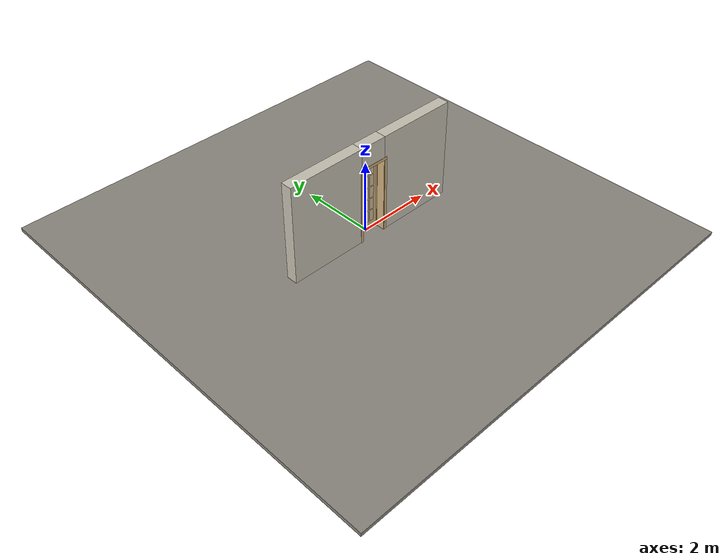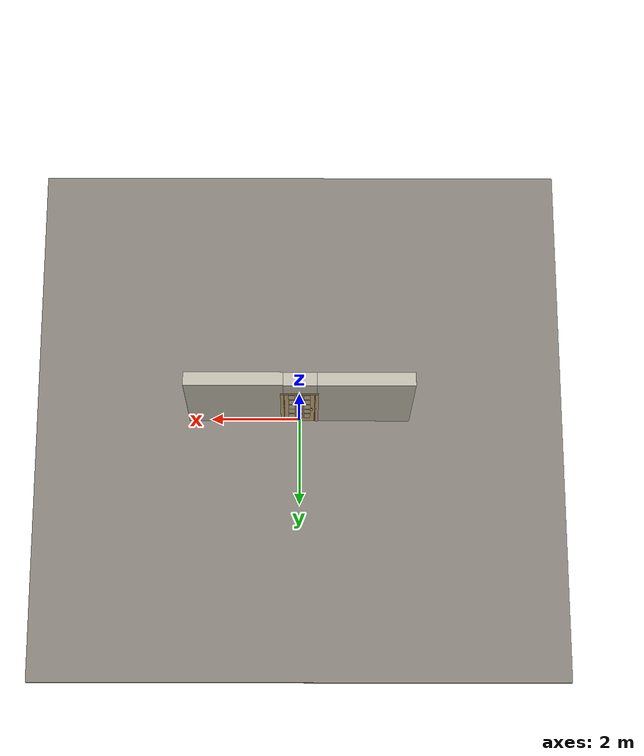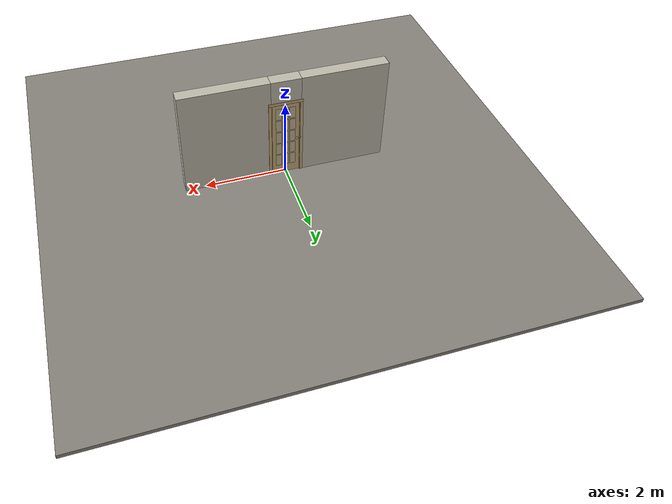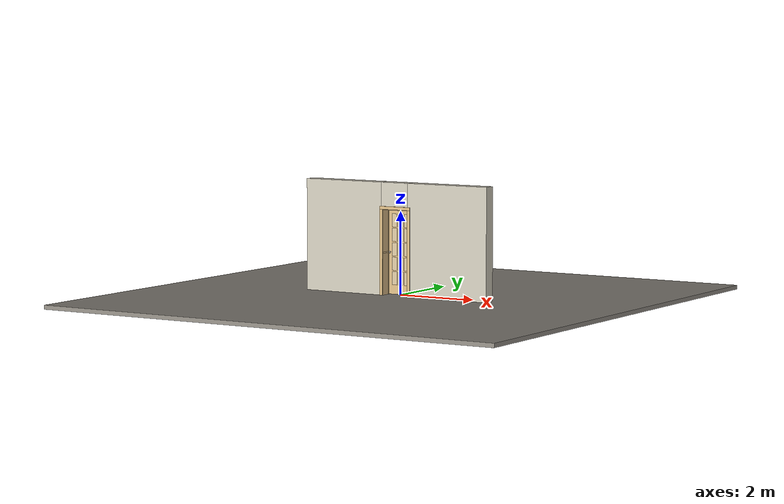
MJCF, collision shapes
<?xml version="1.0" ?>
<mujoco model="db0461_swing_single_full">
  <compiler angle="radian" meshdir="../../hardware" texturedir="../../textures" autolimits="true" inertiafromgeom="false"/>
  <option timestep="0.002" integrator="implicitfast" cone="elliptic" impratio="10" noslip_iterations="3">
    <flag multiccd="enable"/>
  </option>
  <size memory="16M"/>
  <default>
    <geom condim="4" solref="0.005 1" solimp="0.95 0.99 0.001"/>
    <joint solreflimit="0.005 1" solimplimit="0.95 0.99 0.001"/>
    <tendon solreflimit="0.005 1"/>
    <equality solref="0.002 1"/>
  </default>
  <visual>
    <headlight ambient="0.4 0.4 0.4" diffuse="0.7 0.7 0.7" specular="0.2 0.2 0.2"/>
    <quality shadowsize="4096"/>
    <map znear="0.01" zfar="60"/>
  </visual>
  <asset>
    <mesh name="hinge_e53abd72ad" file="hinge_e53abd72ad.obj"/>
    <mesh name="hinge_jamb_c17a76d68c" file="hinge_jamb_c17a76d68c.obj"/>
    <mesh name="knob_248d825e64" file="knob_248d825e64.obj"/>
    <mesh name="knob_d1888f6f03" file="knob_d1888f6f03.obj"/>
    <material name="mat_floor" rgba="0.55 0.53 0.5 1" specular="0.2" shininess="0.15" reflectance="0"/>
    <material name="mat_wall" rgba="0.78 0.76 0.7 1" specular="0.2" shininess="0.1" reflectance="0"/>
    <material name="mat_leaf" rgba="0.82 0.7 0.5 1" specular="0.2" shininess="0.45" reflectance="0"/>
    <material name="mat_glass" rgba="0.85 0.92 0.95 0.25" specular="0.2" shininess="0.95" reflectance="0.1"/>
    <material name="mat_hinge" rgba="0.65 0.66 0.68 1" specular="0.74" shininess="0.5" reflectance="0.36"/>
    <material name="mat_op_nickel_satin" rgba="0.72 0.7 0.66 1" specular="0.8" shininess="0.65" reflectance="0.4"/>
    <material name="mat_trim" rgba="0.85 0.66 0.3 1" specular="0.8" shininess="0.75" reflectance="0.4"/>
    <material name="mat_bolt" rgba="0.85 0.66 0.3 1" specular="0.8" shininess="0.75" reflectance="0.4"/>
    <material name="mat_frame" rgba="0.82 0.7 0.5 1" specular="0.2" shininess="0.45" reflectance="0"/>
    <texture name="skybox" type="skybox" builtin="gradient" rgb1="0.6 0.7 0.85" rgb2="0.9 0.92 0.95" width="256" height="256"/>
  </asset>
  <worldbody>
    <light name="sun" pos="1.5 -2.5 4" dir="-0.3 0.5 -0.8" directional="true" diffuse="0.8 0.8 0.8" specular="0.3 0.3 0.3" castshadow="true"/>
    <light name="fill" pos="-1.5 2.5 3" dir="0.3 -0.5 -0.7" directional="true" diffuse="0.35 0.35 0.4" castshadow="false"/>
    <camera name="robot_view" pos="0 -2.665188 1.734312" xyaxes="1 0 0 0 0.26963 0.962964" fovy="52"/>
    <camera name="far_view" pos="0 2.419187 1.734312" xyaxes="-1 0 0 0 -0.26963 0.962964" fovy="52"/>
    <camera name="iso" pos="-1.932062 -2.258438 2.141063" xyaxes="0.741536 -0.670913 0 0.242917 0.268487 0.932151" fovy="46"/>
    <camera name="detail_handle" pos="-0.089 -0.8665 1.296" xyaxes="0.97561 0.219512 0 -0.070934 0.315262 0.94635" fovy="38"/>
    <geom name="floor" type="box" size="6 6 0.05" pos="0 0 -0.05" material="mat_floor" group="0" contype="1" conaffinity="1" friction="0.8 0.005 0.0001" density="2400"/>
    <geom name="wall_left" type="box" size="1.0585 0.15 1.35" pos="-1.4415 -0.123 1.35" material="mat_wall" group="0" contype="1" conaffinity="1" friction="0.6 0.005 0.0001" density="800"/>
    <geom name="wall_right" type="box" size="1.0735 0.15 1.35" pos="1.4265 -0.123 1.35" material="mat_wall" group="0" contype="1" conaffinity="1" friction="0.6 0.005 0.0001" density="800"/>
    <geom name="wall_header" type="box" size="0.368 0.15 0.303" pos="-0.015 -0.123 2.397" material="mat_wall" group="0" contype="1" conaffinity="1" friction="0.6 0.005 0.0001" density="800"/>
    <geom name="hinge_0_jamb" type="mesh" mesh="hinge_jamb_c17a76d68c" pos="0.331 0.027 0.259" quat="0 0 0 1" material="mat_hinge" group="1" contype="0" conaffinity="0" density="7850"/>
    <geom name="hinge_1_jamb" type="mesh" mesh="hinge_jamb_c17a76d68c" pos="0.331 0.027 1.025" quat="0 0 0 1" material="mat_hinge" group="1" contype="0" conaffinity="0" density="7850"/>
    <geom name="hinge_2_jamb" type="mesh" mesh="hinge_jamb_c17a76d68c" pos="0.331 0.027 1.861" quat="0 0 0 1" material="mat_hinge" group="1" contype="0" conaffinity="0" density="7850"/>
    <geom name="jamb_hinge" type="box" size="0.0095 0.15 1.0225" pos="0.3435 -0.123 1.0225" material="mat_frame" group="0" contype="1" conaffinity="1" friction="0.6 0.005 0.0001" density="400"/>
    <geom name="strike_1016_wall_n" type="box" size="0.0245 0.132575 0.0167" pos="-0.3585 -0.140425 1.016" material="mat_frame" group="0" contype="1" conaffinity="1" friction="0.6 0.005 0.0001" density="400"/>
    <geom name="strike_1016_wall_p" type="box" size="0.0245 0.008 0.0167" pos="-0.3585 0.01585 1.016" material="mat_frame" group="0" contype="1" conaffinity="1" friction="0.6 0.005 0.0001" density="400"/>
    <geom name="strike_1016_ramp" type="box" size="0.0245 0.01649 0.0167" pos="-0.363136 0.028673 1.016" quat="0.977148 0 0 0.212558" material="mat_frame" group="0" contype="1" conaffinity="1" friction="0.12 0.005 0.0001" density="400"/>
    <geom name="strike_1016_back" type="box" size="0.01615 0.00785 0.0167" pos="-0.36685 0 1.016" material="mat_frame" group="0" contype="1" conaffinity="1" friction="0.6 0.005 0.0001" density="400"/>
    <geom name="jamb_strike_0" type="box" size="0.0245 0.15 0.49965" pos="-0.3585 -0.123 0.49965" material="mat_frame" group="0" contype="1" conaffinity="1" friction="0.6 0.005 0.0001" density="400"/>
    <geom name="jamb_strike_1" type="box" size="0.0245 0.15 0.50615" pos="-0.3585 -0.123 1.53885" material="mat_frame" group="0" contype="1" conaffinity="1" friction="0.6 0.005 0.0001" density="400"/>
    <geom name="jamb_head" type="box" size="0.368 0.15 0.0095" pos="-0.015 -0.123 2.0545" material="mat_frame" group="0" contype="1" conaffinity="1" friction="0.6 0.005 0.0001" density="400"/>
    <geom name="head_stud" type="box" size="0.368 0.15 0.015" pos="-0.015 -0.123 2.079" material="mat_wall" group="0" contype="1" conaffinity="1" friction="0.6 0.005 0.0001" density="500"/>
    <geom name="stop_hinge" type="box" size="0.0055 0.016 1.0225" pos="0.3285 -0.0365 1.0225" material="mat_frame" group="0" contype="1" conaffinity="1" friction="0.6 0.005 0.0001" density="400"/>
    <geom name="stop_strike" type="box" size="0.0055 0.016 1.0225" pos="-0.3285 -0.0365 1.0225" material="mat_frame" group="0" contype="1" conaffinity="1" friction="0.6 0.005 0.0001" density="400"/>
    <geom name="stop_head" type="box" size="0.334 0.016 0.0055" pos="0 -0.0365 2.0395" material="mat_frame" group="0" contype="1" conaffinity="1" friction="0.6 0.005 0.0001" density="400"/>
    <geom name="casing_l_n" type="box" size="0.035 0.008 1.032" pos="-0.383 -0.281 1.0225" material="mat_frame" group="2" contype="0" conaffinity="0" density="400"/>
    <geom name="casing_r_n" type="box" size="0.035 0.008 1.032" pos="0.383 -0.281 1.0225" material="mat_frame" group="2" contype="0" conaffinity="0" density="400"/>
    <geom name="casing_h_n" type="box" size="0.418 0.008 0.035" pos="0 -0.281 2.094" material="mat_frame" group="2" contype="0" conaffinity="0" density="400"/>
    <geom name="casing_l_p" type="box" size="0.035 0.008 1.032" pos="-0.383 0.035 1.0225" material="mat_frame" group="2" contype="0" conaffinity="0" density="400"/>
    <geom name="casing_r_p" type="box" size="0.035 0.008 1.032" pos="0.383 0.035 1.0225" material="mat_frame" group="2" contype="0" conaffinity="0" density="400"/>
    <geom name="casing_h_p" type="box" size="0.418 0.008 0.035" pos="0 0.035 2.094" material="mat_frame" group="2" contype="0" conaffinity="0" density="400"/>
    <site name="approach_point" pos="0 -1.5 0" quat="1 0 0 0" size="0.05" rgba="0.2 0.9 0.2 0.5" group="4"/>
    <site name="goal_point" pos="0 1.5 0" quat="1 0 0 0" size="0.05" rgba="0.2 0.9 0.2 0.5" group="4"/>
    <site name="door_plane_center" pos="0 0 1.0225" quat="1 0 0 0" size="0.02" rgba="0.2 0.9 0.2 0.5" group="4"/>
    <body name="leaf" pos="0.334 0 0">
      <inertial pos="-0.320509 0.00059 1.026048" mass="20.938911" quat="0.499039 0.501431 -0.498548 0.500976" diaginertia="0.820468003 7.263917973 8.078355573"/>
      <joint name="leaf_hinge" type="hinge" axis="0 0 -1" pos="-0.003 0.027 0" limited="true" range="0 2.356194" damping="0.119633" frictionloss="0.649455" armature="0.02"/>
      <geom name="leaf_slab" type="box" size="0.33 0.02 1.016" pos="-0.333 0 1.025" material="mat_leaf" group="0" contype="1" conaffinity="1" friction="0.35 0.005 0.0001" density="1"/>
      <geom name="leaf_glass_0" type="box" size="0.07 0.0208 0.158688" pos="-0.163 0 0.391208" material="mat_glass" group="1" contype="0" conaffinity="0" density="1"/>
      <geom name="leaf_glass_1" type="box" size="0.07 0.0208 0.158688" pos="-0.333 0 0.391208" material="mat_glass" group="1" contype="0" conaffinity="0" density="1"/>
      <geom name="leaf_glass_2" type="box" size="0.07 0.0208 0.158688" pos="-0.503 0 0.391208" material="mat_glass" group="1" contype="0" conaffinity="0" density="1"/>
      <geom name="leaf_glass_3" type="box" size="0.07 0.0208 0.158688" pos="-0.163 0 0.738584" material="mat_glass" group="1" contype="0" conaffinity="0" density="1"/>
      <geom name="leaf_glass_4" type="box" size="0.07 0.0208 0.158688" pos="-0.333 0 0.738584" material="mat_glass" group="1" contype="0" conaffinity="0" density="1"/>
      <geom name="leaf_glass_5" type="box" size="0.07 0.0208 0.158688" pos="-0.503 0 0.738584" material="mat_glass" group="1" contype="0" conaffinity="0" density="1"/>
      <geom name="leaf_glass_6" type="box" size="0.07 0.0208 0.158688" pos="-0.163 0 1.08596" material="mat_glass" group="1" contype="0" conaffinity="0" density="1"/>
      <geom name="leaf_glass_7" type="box" size="0.07 0.0208 0.158688" pos="-0.333 0 1.08596" material="mat_glass" group="1" contype="0" conaffinity="0" density="1"/>
      <geom name="leaf_glass_8" type="box" size="0.07 0.0208 0.158688" pos="-0.503 0 1.08596" material="mat_glass" group="1" contype="0" conaffinity="0" density="1"/>
      <geom name="leaf_glass_9" type="box" size="0.07 0.0208 0.158688" pos="-0.163 0 1.433336" material="mat_glass" group="1" contype="0" conaffinity="0" density="1"/>
      <geom name="leaf_glass_10" type="box" size="0.07 0.0208 0.158688" pos="-0.333 0 1.433336" material="mat_glass" group="1" contype="0" conaffinity="0" density="1"/>
      <geom name="leaf_glass_11" type="box" size="0.07 0.0208 0.158688" pos="-0.503 0 1.433336" material="mat_glass" group="1" contype="0" conaffinity="0" density="1"/>
      <geom name="leaf_glass_12" type="box" size="0.07 0.0208 0.158688" pos="-0.163 0 1.780712" material="mat_glass" group="1" contype="0" conaffinity="0" density="1"/>
      <geom name="leaf_glass_13" type="box" size="0.07 0.0208 0.158688" pos="-0.333 0 1.780712" material="mat_glass" group="1" contype="0" conaffinity="0" density="1"/>
      <geom name="leaf_glass_14" type="box" size="0.07 0.0208 0.158688" pos="-0.503 0 1.780712" material="mat_glass" group="1" contype="0" conaffinity="0" density="1"/>
      <geom name="hinge_0" type="mesh" mesh="hinge_e53abd72ad" pos="-0.003 0.027 0.259" quat="0 0 0 1" material="mat_hinge" group="1" contype="0" conaffinity="0" density="7850"/>
      <geom name="hinge_1" type="mesh" mesh="hinge_e53abd72ad" pos="-0.003 0.027 1.025" quat="0 0 0 1" material="mat_hinge" group="1" contype="0" conaffinity="0" density="7850"/>
      <geom name="hinge_2" type="mesh" mesh="hinge_e53abd72ad" pos="-0.003 0.027 1.861" quat="0 0 0 1" material="mat_hinge" group="1" contype="0" conaffinity="0" density="7850"/>
      <geom name="leaf_latch_bolt_faceplate" type="box" size="0.0006 0.01235 0.0267" pos="-0.6624 0 1.016" material="mat_bolt" group="1" contype="0" conaffinity="0" density="8500"/>
      <site name="leaf_edge_mid" pos="-0.663 0 1.016" quat="1 0 0 0" size="0.02" rgba="0.2 0.9 0.2 0.5" group="4"/>
      <body name="leaf_handle" pos="-0.603 0 1.016">
        <inertial pos="0 0.000221 0" mass="1.1511" quat="0.5 0.5 0.5 0.5" diaginertia="0.000312482 0.004034625 0.004034625"/>
        <joint name="leaf_handle_hinge" type="hinge" axis="0 1 0" limited="true" range="0 0.09" damping="0.143614" frictionloss="0.038" stiffness="0.5" springref="-0.5" armature="0.01"/>
        <geom name="leaf_handle_spindle" type="cylinder" size="0.006 0.028" pos="0 0 0" quat="0.707107 -0.707107 0 0" material="mat_op_nickel_satin" group="1" contype="0" conaffinity="0" density="7850"/>
        <geom name="leaf_handle_knob_n" type="mesh" mesh="knob_d1888f6f03" pos="0 -0.02 0" quat="0 0 -0.707107 0.707107" material="mat_op_nickel_satin" group="1" contype="0" conaffinity="0" density="3000"/>
        <geom name="leaf_handle_knob_col_n" type="sphere" size="0.0243" pos="0 -0.0665 0" material="mat_op_nickel_satin" group="0" contype="1" conaffinity="1" friction="0.9 0.01 0.0001" density="3000"/>
        <geom name="leaf_handle_knob_neck_n" type="cylinder" size="0.011 0.012" pos="0 -0.032 0" quat="0.707107 -0.707107 0 0" material="mat_op_nickel_satin" group="3" contype="1" conaffinity="1" rgba="0.8 0.3 0.3 0.25" friction="0.6 0.005 0.0001" density="3000"/>
        <geom name="leaf_handle_knob_p" type="mesh" mesh="knob_248d825e64" pos="0 0.02 0" quat="0 0 0.707107 0.707107" material="mat_op_nickel_satin" group="1" contype="0" conaffinity="0" density="3000"/>
        <geom name="leaf_handle_knob_col_p" type="sphere" size="0.0243" pos="0 0.0665 0" material="mat_op_nickel_satin" group="0" contype="1" conaffinity="1" friction="0.9 0.01 0.0001" density="3000"/>
        <geom name="leaf_handle_knob_neck_p" type="cylinder" size="0.011 0.012" pos="0 0.032 0" quat="0.707107 -0.707107 0 0" material="mat_op_nickel_satin" group="3" contype="1" conaffinity="1" rgba="0.8 0.3 0.3 0.25" friction="0.6 0.005 0.0001" density="3000"/>
        <site name="leaf_handle_grip_n" pos="0 -0.0665 0" quat="1 0 0 0" size="0.012" rgba="0.2 0.9 0.2 0.5" group="4"/>
        <site name="leaf_handle_grip_p" pos="0 0.0665 0" quat="1 0 0 0" size="0.012" rgba="0.2 0.9 0.2 0.5" group="4"/>
      </body>
      <body name="leaf_latch_bolt" pos="-0.663 0 1.016">
        <inertial pos="0.00865 0 0" mass="0.041419" quat="0.92388 0.382683 0 0" diaginertia="0.000000798 0.000005598 0.000005598"/>
        <joint name="leaf_latch_bolt_slide" type="slide" axis="1 0 0" limited="true" range="0 0.0127" damping="2" frictionloss="0.3" stiffness="300" springref="-0.008333" armature="0.1"/>
        <geom name="leaf_latch_bolt_capsule" type="capsule" size="0.00635 0.015" pos="0.00865 0 0" quat="0.707107 0 -0.707107 0" material="mat_bolt" group="0" contype="1" conaffinity="1" friction="0.2 0.005 0.0001" density="8500"/>
      </body>
    </body>
  </worldbody>
  <tendon>
    <fixed name="leaf_latch_bolt_coupling" limited="true" range="0 10">
      <joint joint="leaf_latch_bolt_slide" coef="1"/>
      <joint joint="leaf_handle_hinge" coef="-0.015679"/>
    </fixed>
  </tendon>
  <sensor>
    <jointpos name="leaf_hinge_pos" joint="leaf_hinge"/>
    <jointvel name="leaf_hinge_vel" joint="leaf_hinge"/>
    <jointpos name="leaf_handle_hinge_pos" joint="leaf_handle_hinge"/>
    <jointvel name="leaf_handle_hinge_vel" joint="leaf_handle_hinge"/>
    <jointpos name="leaf_latch_bolt_slide_pos" joint="leaf_latch_bolt_slide"/>
    <jointvel name="leaf_latch_bolt_slide_vel" joint="leaf_latch_bolt_slide"/>
  </sensor>
</mujoco>
